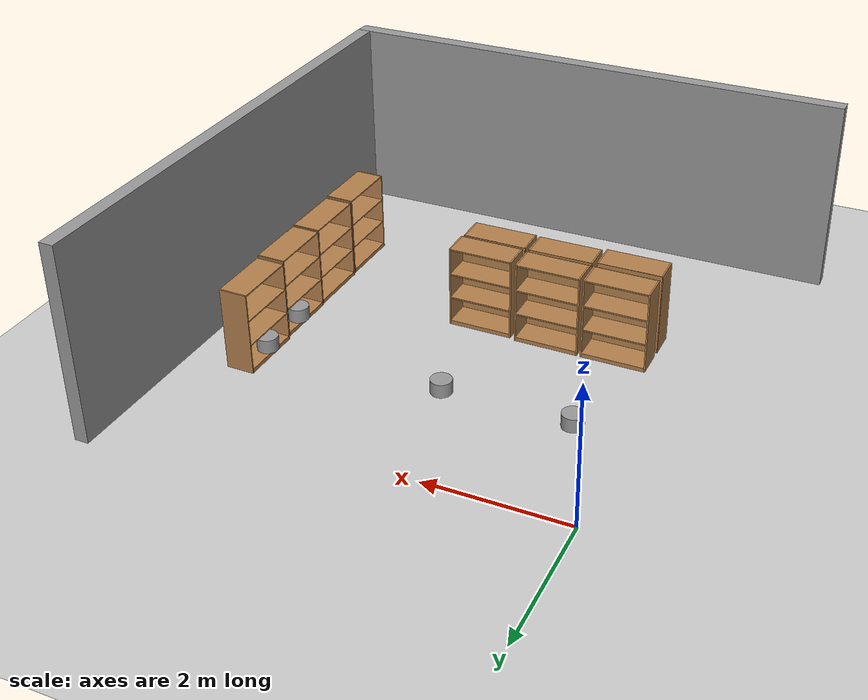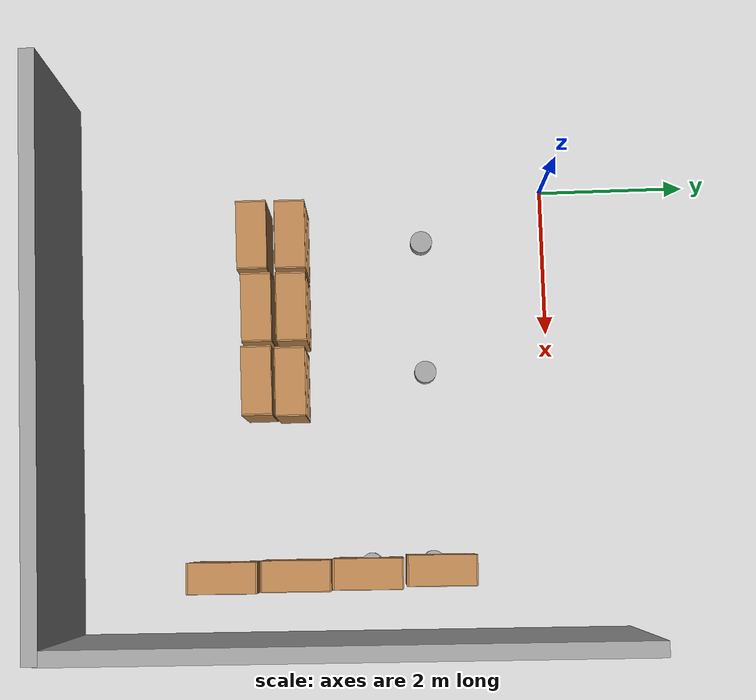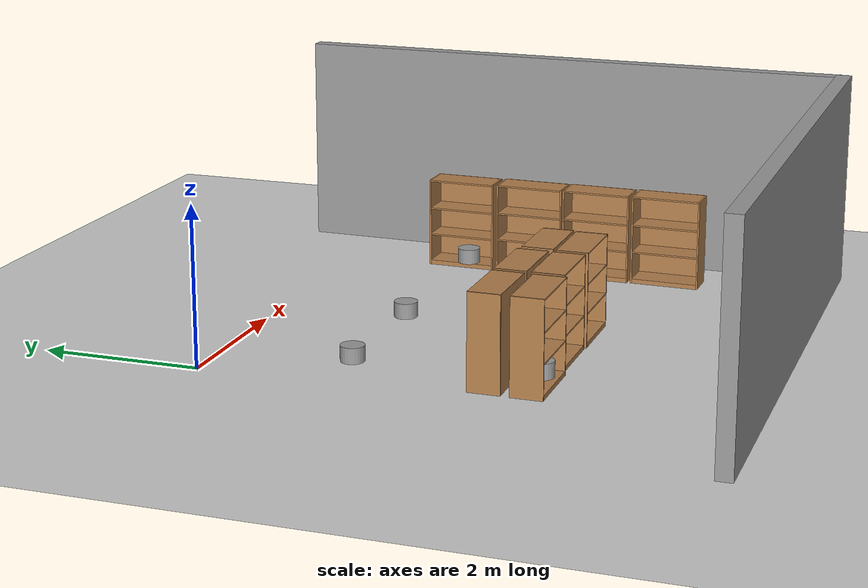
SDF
<sdf version="1.7">
 <world name="default">
  <model name="ground_plane">
   <static>1</static>
   <link name="link">
    <collision name="collision">
     <geometry><plane><normal>0 0 1</normal><size>100 100</size></plane></geometry>
     <surface>
      <contact><collide_bitmask>65535</collide_bitmask></contact>
      <friction><ode><mu>100</mu><mu2>50</mu2></ode></friction>
     </surface>
    </collision>
    <visual name="visual">
     <cast_shadows>0</cast_shadows>
     <geometry><plane><normal>0 0 1</normal><size>100 100</size></plane></geometry>
     <material>
      <script><uri>file://media/materials/scripts/gazebo.material</uri><name>Gazebo/Grey</name></script>
     </material>
    </visual>
   </link>
  </model>
  <model name="bookshelf_2_clone_4">
   <static>1</static>
   <link name="link">
    <inertial><mass>1</mass></inertial>
    <collision name="back">
     <pose>0 0.005 0.6 0 -0 0</pose>
     <geometry><box><size>0.9 0.01 1.2</size></box></geometry>
    </collision>
    <visual name="visual1">
     <pose>0 0.005 0.6 0 -0 0</pose>
     <geometry><box><size>0.9 0.01 1.2</size></box></geometry>
     <material>
      <script><uri>file://media/materials/scripts/gazebo.material</uri><name>Gazebo/Wood</name></script>
     </material>
    </visual>
    <collision name="left_side">
     <pose>0.45 -0.195 0.6 0 -0 0</pose>
     <geometry><box><size>0.02 0.4 1.2</size></box></geometry>
    </collision>
    <visual name="visual2">
     <pose>0.45 -0.195 0.6 0 -0 0</pose>
     <geometry><box><size>0.02 0.4 1.2</size></box></geometry>
     <material>
      <script><uri>file://media/materials/scripts/gazebo.material</uri><name>Gazebo/Wood</name></script>
     </material>
    </visual>
    <collision name="right_side">
     <pose>-0.45 -0.195 0.6 0 -0 0</pose>
     <geometry><box><size>0.02 0.4 1.2</size></box></geometry>
    </collision>
    <visual name="visual3">
     <pose>-0.45 -0.195 0.6 0 -0 0</pose>
     <geometry><box><size>0.02 0.4 1.2</size></box></geometry>
     <material>
      <script><uri>file://media/materials/scripts/gazebo.material</uri><name>Gazebo/Wood</name></script>
     </material>
    </visual>
    <collision name="bottom">
     <pose>0 -0.195 0.03 0 -0 0</pose>
     <geometry><box><size>0.88 0.4 0.06</size></box></geometry>
    </collision>
    <visual name="visual4">
     <pose>0 -0.195 0.03 0 -0 0</pose>
     <geometry><box><size>0.88 0.4 0.06</size></box></geometry>
     <material>
      <script><uri>file://media/materials/scripts/gazebo.material</uri><name>Gazebo/Wood</name></script>
     </material>
    </visual>
    <collision name="top">
     <pose>0 -0.195 1.19 0 -0 0</pose>
     <geometry><box><size>0.88 0.4 0.02</size></box></geometry>
    </collision>
    <visual name="visual5">
     <pose>0 -0.195 1.19 0 -0 0</pose>
     <geometry><box><size>0.88 0.4 0.02</size></box></geometry>
     <material>
      <script><uri>file://media/materials/scripts/gazebo.material</uri><name>Gazebo/Wood</name></script>
     </material>
    </visual>
    <collision name="low_shelf">
     <pose>0 -0.195 0.43 0 -0 0</pose>
     <geometry><box><size>0.88 0.4 0.02</size></box></geometry>
    </collision>
    <visual name="visual6">
     <pose>0 -0.195 0.43 0 -0 0</pose>
     <geometry><box><size>0.88 0.4 0.02</size></box></geometry>
     <material>
      <script><uri>file://media/materials/scripts/gazebo.material</uri><name>Gazebo/Wood</name></script>
     </material>
    </visual>
    <collision name="high_shelf">
     <pose>0 -0.195 0.8 0 -0 0</pose>
     <geometry><box><size>0.88 0.4 0.02</size></box></geometry>
    </collision>
    <visual name="visual7">
     <pose>0 -0.195 0.8 0 -0 0</pose>
     <geometry><box><size>0.88 0.4 0.02</size></box></geometry>
     <material>
      <script><uri>file://media/materials/scripts/gazebo.material</uri><name>Gazebo/Wood</name></script>
     </material>
    </visual>
   </link>
   <pose>2.67351 -3.69975 0 0 -0 3.13622</pose>
  </model>
  <model name="bookshelf_clone_clone_1">
   <static>1</static>
   <link name="link">
    <inertial><mass>1</mass></inertial>
    <collision name="back">
     <pose>0 0.005 0.6 0 -0 0</pose>
     <geometry><box><size>0.9 0.01 1.2</size></box></geometry>
    </collision>
    <visual name="visual1">
     <pose>0 0.005 0.6 0 -0 0</pose>
     <geometry><box><size>0.9 0.01 1.2</size></box></geometry>
     <material>
      <script><uri>file://media/materials/scripts/gazebo.material</uri><name>Gazebo/Wood</name></script>
     </material>
    </visual>
    <collision name="left_side">
     <pose>0.45 -0.195 0.6 0 -0 0</pose>
     <geometry><box><size>0.02 0.4 1.2</size></box></geometry>
    </collision>
    <visual name="visual2">
     <pose>0.45 -0.195 0.6 0 -0 0</pose>
     <geometry><box><size>0.02 0.4 1.2</size></box></geometry>
     <material>
      <script><uri>file://media/materials/scripts/gazebo.material</uri><name>Gazebo/Wood</name></script>
     </material>
    </visual>
    <collision name="right_side">
     <pose>-0.45 -0.195 0.6 0 -0 0</pose>
     <geometry><box><size>0.02 0.4 1.2</size></box></geometry>
    </collision>
    <visual name="visual3">
     <pose>-0.45 -0.195 0.6 0 -0 0</pose>
     <geometry><box><size>0.02 0.4 1.2</size></box></geometry>
     <material>
      <script><uri>file://media/materials/scripts/gazebo.material</uri><name>Gazebo/Wood</name></script>
     </material>
    </visual>
    <collision name="bottom">
     <pose>0 -0.195 0.03 0 -0 0</pose>
     <geometry><box><size>0.88 0.4 0.06</size></box></geometry>
    </collision>
    <visual name="visual4">
     <pose>0 -0.195 0.03 0 -0 0</pose>
     <geometry><box><size>0.88 0.4 0.06</size></box></geometry>
     <material>
      <script><uri>file://media/materials/scripts/gazebo.material</uri><name>Gazebo/Wood</name></script>
     </material>
    </visual>
    <collision name="top">
     <pose>0 -0.195 1.19 0 -0 0</pose>
     <geometry><box><size>0.88 0.4 0.02</size></box></geometry>
    </collision>
    <visual name="visual5">
     <pose>0 -0.195 1.19 0 -0 0</pose>
     <geometry><box><size>0.88 0.4 0.02</size></box></geometry>
     <material>
      <script><uri>file://media/materials/scripts/gazebo.material</uri><name>Gazebo/Wood</name></script>
     </material>
    </visual>
    <collision name="low_shelf">
     <pose>0 -0.195 0.43 0 -0 0</pose>
     <geometry><box><size>0.88 0.4 0.02</size></box></geometry>
    </collision>
    <visual name="visual6">
     <pose>0 -0.195 0.43 0 -0 0</pose>
     <geometry><box><size>0.88 0.4 0.02</size></box></geometry>
     <material>
      <script><uri>file://media/materials/scripts/gazebo.material</uri><name>Gazebo/Wood</name></script>
     </material>
    </visual>
    <collision name="high_shelf">
     <pose>0 -0.195 0.8 0 -0 0</pose>
     <geometry><box><size>0.88 0.4 0.02</size></box></geometry>
    </collision>
    <visual name="visual7">
     <pose>0 -0.195 0.8 0 -0 0</pose>
     <geometry><box><size>0.88 0.4 0.02</size></box></geometry>
     <material>
      <script><uri>file://media/materials/scripts/gazebo.material</uri><name>Gazebo/Wood</name></script>
     </material>
    </visual>
   </link>
   <pose>2.6482 -3.75149 0 0 -0 0</pose>
  </model>
  <model name="bookshelf_2_clone_clone">
   <static>1</static>
   <link name="link">
    <inertial><mass>1</mass></inertial>
    <collision name="back">
     <pose>0 0.005 0.6 0 -0 0</pose>
     <geometry><box><size>0.9 0.01 1.2</size></box></geometry>
    </collision>
    <visual name="visual1">
     <pose>0 0.005 0.6 0 -0 0</pose>
     <geometry><box><size>0.9 0.01 1.2</size></box></geometry>
     <material>
      <script><uri>file://media/materials/scripts/gazebo.material</uri><name>Gazebo/Wood</name></script>
     </material>
    </visual>
    <collision name="left_side">
     <pose>0.45 -0.195 0.6 0 -0 0</pose>
     <geometry><box><size>0.02 0.4 1.2</size></box></geometry>
    </collision>
    <visual name="visual2">
     <pose>0.45 -0.195 0.6 0 -0 0</pose>
     <geometry><box><size>0.02 0.4 1.2</size></box></geometry>
     <material>
      <script><uri>file://media/materials/scripts/gazebo.material</uri><name>Gazebo/Wood</name></script>
     </material>
    </visual>
    <collision name="right_side">
     <pose>-0.45 -0.195 0.6 0 -0 0</pose>
     <geometry><box><size>0.02 0.4 1.2</size></box></geometry>
    </collision>
    <visual name="visual3">
     <pose>-0.45 -0.195 0.6 0 -0 0</pose>
     <geometry><box><size>0.02 0.4 1.2</size></box></geometry>
     <material>
      <script><uri>file://media/materials/scripts/gazebo.material</uri><name>Gazebo/Wood</name></script>
     </material>
    </visual>
    <collision name="bottom">
     <pose>0 -0.195 0.03 0 -0 0</pose>
     <geometry><box><size>0.88 0.4 0.06</size></box></geometry>
    </collision>
    <visual name="visual4">
     <pose>0 -0.195 0.03 0 -0 0</pose>
     <geometry><box><size>0.88 0.4 0.06</size></box></geometry>
     <material>
      <script><uri>file://media/materials/scripts/gazebo.material</uri><name>Gazebo/Wood</name></script>
     </material>
    </visual>
    <collision name="top">
     <pose>0 -0.195 1.19 0 -0 0</pose>
     <geometry><box><size>0.88 0.4 0.02</size></box></geometry>
    </collision>
    <visual name="visual5">
     <pose>0 -0.195 1.19 0 -0 0</pose>
     <geometry><box><size>0.88 0.4 0.02</size></box></geometry>
     <material>
      <script><uri>file://media/materials/scripts/gazebo.material</uri><name>Gazebo/Wood</name></script>
     </material>
    </visual>
    <collision name="low_shelf">
     <pose>0 -0.195 0.43 0 -0 0</pose>
     <geometry><box><size>0.88 0.4 0.02</size></box></geometry>
    </collision>
    <visual name="visual6">
     <pose>0 -0.195 0.43 0 -0 0</pose>
     <geometry><box><size>0.88 0.4 0.02</size></box></geometry>
     <material>
      <script><uri>file://media/materials/scripts/gazebo.material</uri><name>Gazebo/Wood</name></script>
     </material>
    </visual>
    <collision name="high_shelf">
     <pose>0 -0.195 0.8 0 -0 0</pose>
     <geometry><box><size>0.88 0.4 0.02</size></box></geometry>
    </collision>
    <visual name="visual7">
     <pose>0 -0.195 0.8 0 -0 0</pose>
     <geometry><box><size>0.88 0.4 0.02</size></box></geometry>
     <material>
      <script><uri>file://media/materials/scripts/gazebo.material</uri><name>Gazebo/Wood</name></script>
     </material>
    </visual>
   </link>
   <pose>1.68191 -3.66271 0 0 -0 3.13622</pose>
  </model>
  <model name="bookshelf_2_clone_clone_0">
   <static>1</static>
   <link name="link">
    <inertial><mass>1</mass></inertial>
    <collision name="back">
     <pose>0 0.005 0.6 0 -0 0</pose>
     <geometry><box><size>0.9 0.01 1.2</size></box></geometry>
    </collision>
    <visual name="visual1">
     <pose>0 0.005 0.6 0 -0 0</pose>
     <geometry><box><size>0.9 0.01 1.2</size></box></geometry>
     <material>
      <script><uri>file://media/materials/scripts/gazebo.material</uri><name>Gazebo/Wood</name></script>
     </material>
    </visual>
    <collision name="left_side">
     <pose>0.45 -0.195 0.6 0 -0 0</pose>
     <geometry><box><size>0.02 0.4 1.2</size></box></geometry>
    </collision>
    <visual name="visual2">
     <pose>0.45 -0.195 0.6 0 -0 0</pose>
     <geometry><box><size>0.02 0.4 1.2</size></box></geometry>
     <material>
      <script><uri>file://media/materials/scripts/gazebo.material</uri><name>Gazebo/Wood</name></script>
     </material>
    </visual>
    <collision name="right_side">
     <pose>-0.45 -0.195 0.6 0 -0 0</pose>
     <geometry><box><size>0.02 0.4 1.2</size></box></geometry>
    </collision>
    <visual name="visual3">
     <pose>-0.45 -0.195 0.6 0 -0 0</pose>
     <geometry><box><size>0.02 0.4 1.2</size></box></geometry>
     <material>
      <script><uri>file://media/materials/scripts/gazebo.material</uri><name>Gazebo/Wood</name></script>
     </material>
    </visual>
    <collision name="bottom">
     <pose>0 -0.195 0.03 0 -0 0</pose>
     <geometry><box><size>0.88 0.4 0.06</size></box></geometry>
    </collision>
    <visual name="visual4">
     <pose>0 -0.195 0.03 0 -0 0</pose>
     <geometry><box><size>0.88 0.4 0.06</size></box></geometry>
     <material>
      <script><uri>file://media/materials/scripts/gazebo.material</uri><name>Gazebo/Wood</name></script>
     </material>
    </visual>
    <collision name="top">
     <pose>0 -0.195 1.19 0 -0 0</pose>
     <geometry><box><size>0.88 0.4 0.02</size></box></geometry>
    </collision>
    <visual name="visual5">
     <pose>0 -0.195 1.19 0 -0 0</pose>
     <geometry><box><size>0.88 0.4 0.02</size></box></geometry>
     <material>
      <script><uri>file://media/materials/scripts/gazebo.material</uri><name>Gazebo/Wood</name></script>
     </material>
    </visual>
    <collision name="low_shelf">
     <pose>0 -0.195 0.43 0 -0 0</pose>
     <geometry><box><size>0.88 0.4 0.02</size></box></geometry>
    </collision>
    <visual name="visual6">
     <pose>0 -0.195 0.43 0 -0 0</pose>
     <geometry><box><size>0.88 0.4 0.02</size></box></geometry>
     <material>
      <script><uri>file://media/materials/scripts/gazebo.material</uri><name>Gazebo/Wood</name></script>
     </material>
    </visual>
    <collision name="high_shelf">
     <pose>0 -0.195 0.8 0 -0 0</pose>
     <geometry><box><size>0.88 0.4 0.02</size></box></geometry>
    </collision>
    <visual name="visual7">
     <pose>0 -0.195 0.8 0 -0 0</pose>
     <geometry><box><size>0.88 0.4 0.02</size></box></geometry>
     <material>
      <script><uri>file://media/materials/scripts/gazebo.material</uri><name>Gazebo/Wood</name></script>
     </material>
    </visual>
   </link>
   <pose>0.715126 -3.6559 0 0 -0 3.13622</pose>
  </model>
  <model name="bookshelf_clone_clone_clone_0_clone">
   <static>1</static>
   <link name="link">
    <inertial><mass>1</mass></inertial>
    <collision name="back">
     <pose>0 0.005 0.6 0 -0 0</pose>
     <geometry><box><size>0.9 0.01 1.2</size></box></geometry>
    </collision>
    <visual name="visual1">
     <pose>0 0.005 0.6 0 -0 0</pose>
     <geometry><box><size>0.9 0.01 1.2</size></box></geometry>
     <material>
      <script><uri>file://media/materials/scripts/gazebo.material</uri><name>Gazebo/Wood</name></script>
     </material>
    </visual>
    <collision name="left_side">
     <pose>0.45 -0.195 0.6 0 -0 0</pose>
     <geometry><box><size>0.02 0.4 1.2</size></box></geometry>
    </collision>
    <visual name="visual2">
     <pose>0.45 -0.195 0.6 0 -0 0</pose>
     <geometry><box><size>0.02 0.4 1.2</size></box></geometry>
     <material>
      <script><uri>file://media/materials/scripts/gazebo.material</uri><name>Gazebo/Wood</name></script>
     </material>
    </visual>
    <collision name="right_side">
     <pose>-0.45 -0.195 0.6 0 -0 0</pose>
     <geometry><box><size>0.02 0.4 1.2</size></box></geometry>
    </collision>
    <visual name="visual3">
     <pose>-0.45 -0.195 0.6 0 -0 0</pose>
     <geometry><box><size>0.02 0.4 1.2</size></box></geometry>
     <material>
      <script><uri>file://media/materials/scripts/gazebo.material</uri><name>Gazebo/Wood</name></script>
     </material>
    </visual>
    <collision name="bottom">
     <pose>0 -0.195 0.03 0 -0 0</pose>
     <geometry><box><size>0.88 0.4 0.06</size></box></geometry>
    </collision>
    <visual name="visual4">
     <pose>0 -0.195 0.03 0 -0 0</pose>
     <geometry><box><size>0.88 0.4 0.06</size></box></geometry>
     <material>
      <script><uri>file://media/materials/scripts/gazebo.material</uri><name>Gazebo/Wood</name></script>
     </material>
    </visual>
    <collision name="top">
     <pose>0 -0.195 1.19 0 -0 0</pose>
     <geometry><box><size>0.88 0.4 0.02</size></box></geometry>
    </collision>
    <visual name="visual5">
     <pose>0 -0.195 1.19 0 -0 0</pose>
     <geometry><box><size>0.88 0.4 0.02</size></box></geometry>
     <material>
      <script><uri>file://media/materials/scripts/gazebo.material</uri><name>Gazebo/Wood</name></script>
     </material>
    </visual>
    <collision name="low_shelf">
     <pose>0 -0.195 0.43 0 -0 0</pose>
     <geometry><box><size>0.88 0.4 0.02</size></box></geometry>
    </collision>
    <visual name="visual6">
     <pose>0 -0.195 0.43 0 -0 0</pose>
     <geometry><box><size>0.88 0.4 0.02</size></box></geometry>
     <material>
      <script><uri>file://media/materials/scripts/gazebo.material</uri><name>Gazebo/Wood</name></script>
     </material>
    </visual>
    <collision name="high_shelf">
     <pose>0 -0.195 0.8 0 -0 0</pose>
     <geometry><box><size>0.88 0.4 0.02</size></box></geometry>
    </collision>
    <visual name="visual7">
     <pose>0 -0.195 0.8 0 -0 0</pose>
     <geometry><box><size>0.88 0.4 0.02</size></box></geometry>
     <material>
      <script><uri>file://media/materials/scripts/gazebo.material</uri><name>Gazebo/Wood</name></script>
     </material>
    </visual>
   </link>
   <pose>1.67784 -3.7341 0 0 -0 0</pose>
  </model>
  <model name="bookshelf_clone_clone_clone_0_clone_0">
   <static>1</static>
   <link name="link">
    <inertial><mass>1</mass></inertial>
    <collision name="back">
     <pose>0 0.005 0.6 0 -0 0</pose>
     <geometry><box><size>0.9 0.01 1.2</size></box></geometry>
    </collision>
    <visual name="visual1">
     <pose>0 0.005 0.6 0 -0 0</pose>
     <geometry><box><size>0.9 0.01 1.2</size></box></geometry>
     <material>
      <script><uri>file://media/materials/scripts/gazebo.material</uri><name>Gazebo/Wood</name></script>
     </material>
    </visual>
    <collision name="left_side">
     <pose>0.45 -0.195 0.6 0 -0 0</pose>
     <geometry><box><size>0.02 0.4 1.2</size></box></geometry>
    </collision>
    <visual name="visual2">
     <pose>0.45 -0.195 0.6 0 -0 0</pose>
     <geometry><box><size>0.02 0.4 1.2</size></box></geometry>
     <material>
      <script><uri>file://media/materials/scripts/gazebo.material</uri><name>Gazebo/Wood</name></script>
     </material>
    </visual>
    <collision name="right_side">
     <pose>-0.45 -0.195 0.6 0 -0 0</pose>
     <geometry><box><size>0.02 0.4 1.2</size></box></geometry>
    </collision>
    <visual name="visual3">
     <pose>-0.45 -0.195 0.6 0 -0 0</pose>
     <geometry><box><size>0.02 0.4 1.2</size></box></geometry>
     <material>
      <script><uri>file://media/materials/scripts/gazebo.material</uri><name>Gazebo/Wood</name></script>
     </material>
    </visual>
    <collision name="bottom">
     <pose>0 -0.195 0.03 0 -0 0</pose>
     <geometry><box><size>0.88 0.4 0.06</size></box></geometry>
    </collision>
    <visual name="visual4">
     <pose>0 -0.195 0.03 0 -0 0</pose>
     <geometry><box><size>0.88 0.4 0.06</size></box></geometry>
     <material>
      <script><uri>file://media/materials/scripts/gazebo.material</uri><name>Gazebo/Wood</name></script>
     </material>
    </visual>
    <collision name="top">
     <pose>0 -0.195 1.19 0 -0 0</pose>
     <geometry><box><size>0.88 0.4 0.02</size></box></geometry>
    </collision>
    <visual name="visual5">
     <pose>0 -0.195 1.19 0 -0 0</pose>
     <geometry><box><size>0.88 0.4 0.02</size></box></geometry>
     <material>
      <script><uri>file://media/materials/scripts/gazebo.material</uri><name>Gazebo/Wood</name></script>
     </material>
    </visual>
    <collision name="low_shelf">
     <pose>0 -0.195 0.43 0 -0 0</pose>
     <geometry><box><size>0.88 0.4 0.02</size></box></geometry>
    </collision>
    <visual name="visual6">
     <pose>0 -0.195 0.43 0 -0 0</pose>
     <geometry><box><size>0.88 0.4 0.02</size></box></geometry>
     <material>
      <script><uri>file://media/materials/scripts/gazebo.material</uri><name>Gazebo/Wood</name></script>
     </material>
    </visual>
    <collision name="high_shelf">
     <pose>0 -0.195 0.8 0 -0 0</pose>
     <geometry><box><size>0.88 0.4 0.02</size></box></geometry>
    </collision>
    <visual name="visual7">
     <pose>0 -0.195 0.8 0 -0 0</pose>
     <geometry><box><size>0.88 0.4 0.02</size></box></geometry>
     <material>
      <script><uri>file://media/materials/scripts/gazebo.material</uri><name>Gazebo/Wood</name></script>
     </material>
    </visual>
   </link>
   <pose>0.708118 -3.77653 0 0 -0 0</pose>
  </model>
  <model name="bookshelf_3_clone_3">
   <static>1</static>
   <link name="link">
    <inertial><mass>1</mass></inertial>
    <collision name="back">
     <pose>0 0.005 0.6 0 -0 0</pose>
     <geometry><box><size>0.9 0.01 1.2</size></box></geometry>
    </collision>
    <visual name="visual1">
     <pose>0 0.005 0.6 0 -0 0</pose>
     <geometry><box><size>0.9 0.01 1.2</size></box></geometry>
     <material>
      <script><uri>file://media/materials/scripts/gazebo.material</uri><name>Gazebo/Wood</name></script>
     </material>
    </visual>
    <collision name="left_side">
     <pose>0.45 -0.195 0.6 0 -0 0</pose>
     <geometry><box><size>0.02 0.4 1.2</size></box></geometry>
    </collision>
    <visual name="visual2">
     <pose>0.45 -0.195 0.6 0 -0 0</pose>
     <geometry><box><size>0.02 0.4 1.2</size></box></geometry>
     <material>
      <script><uri>file://media/materials/scripts/gazebo.material</uri><name>Gazebo/Wood</name></script>
     </material>
    </visual>
    <collision name="right_side">
     <pose>-0.45 -0.195 0.6 0 -0 0</pose>
     <geometry><box><size>0.02 0.4 1.2</size></box></geometry>
    </collision>
    <visual name="visual3">
     <pose>-0.45 -0.195 0.6 0 -0 0</pose>
     <geometry><box><size>0.02 0.4 1.2</size></box></geometry>
     <material>
      <script><uri>file://media/materials/scripts/gazebo.material</uri><name>Gazebo/Wood</name></script>
     </material>
    </visual>
    <collision name="bottom">
     <pose>0 -0.195 0.03 0 -0 0</pose>
     <geometry><box><size>0.88 0.4 0.06</size></box></geometry>
    </collision>
    <visual name="visual4">
     <pose>0 -0.195 0.03 0 -0 0</pose>
     <geometry><box><size>0.88 0.4 0.06</size></box></geometry>
     <material>
      <script><uri>file://media/materials/scripts/gazebo.material</uri><name>Gazebo/Wood</name></script>
     </material>
    </visual>
    <collision name="top">
     <pose>0 -0.195 1.19 0 -0 0</pose>
     <geometry><box><size>0.88 0.4 0.02</size></box></geometry>
    </collision>
    <visual name="visual5">
     <pose>0 -0.195 1.19 0 -0 0</pose>
     <geometry><box><size>0.88 0.4 0.02</size></box></geometry>
     <material>
      <script><uri>file://media/materials/scripts/gazebo.material</uri><name>Gazebo/Wood</name></script>
     </material>
    </visual>
    <collision name="low_shelf">
     <pose>0 -0.195 0.43 0 -0 0</pose>
     <geometry><box><size>0.88 0.4 0.02</size></box></geometry>
    </collision>
    <visual name="visual6">
     <pose>0 -0.195 0.43 0 -0 0</pose>
     <geometry><box><size>0.88 0.4 0.02</size></box></geometry>
     <material>
      <script><uri>file://media/materials/scripts/gazebo.material</uri><name>Gazebo/Wood</name></script>
     </material>
    </visual>
    <collision name="high_shelf">
     <pose>0 -0.195 0.8 0 -0 0</pose>
     <geometry><box><size>0.88 0.4 0.02</size></box></geometry>
    </collision>
    <visual name="visual7">
     <pose>0 -0.195 0.8 0 -0 0</pose>
     <geometry><box><size>0.88 0.4 0.02</size></box></geometry>
     <material>
      <script><uri>file://media/materials/scripts/gazebo.material</uri><name>Gazebo/Wood</name></script>
     </material>
    </visual>
   </link>
   <pose>5.38593 -1.59971 0 0 0 -1.59113</pose>
  </model>
  <model name="bookshelf_3_clone_4">
   <static>1</static>
   <link name="link">
    <inertial><mass>1</mass></inertial>
    <collision name="back">
     <pose>0 0.005 0.6 0 -0 0</pose>
     <geometry><box><size>0.9 0.01 1.2</size></box></geometry>
    </collision>
    <visual name="visual1">
     <pose>0 0.005 0.6 0 -0 0</pose>
     <geometry><box><size>0.9 0.01 1.2</size></box></geometry>
     <material>
      <script><uri>file://media/materials/scripts/gazebo.material</uri><name>Gazebo/Wood</name></script>
     </material>
    </visual>
    <collision name="left_side">
     <pose>0.45 -0.195 0.6 0 -0 0</pose>
     <geometry><box><size>0.02 0.4 1.2</size></box></geometry>
    </collision>
    <visual name="visual2">
     <pose>0.45 -0.195 0.6 0 -0 0</pose>
     <geometry><box><size>0.02 0.4 1.2</size></box></geometry>
     <material>
      <script><uri>file://media/materials/scripts/gazebo.material</uri><name>Gazebo/Wood</name></script>
     </material>
    </visual>
    <collision name="right_side">
     <pose>-0.45 -0.195 0.6 0 -0 0</pose>
     <geometry><box><size>0.02 0.4 1.2</size></box></geometry>
    </collision>
    <visual name="visual3">
     <pose>-0.45 -0.195 0.6 0 -0 0</pose>
     <geometry><box><size>0.02 0.4 1.2</size></box></geometry>
     <material>
      <script><uri>file://media/materials/scripts/gazebo.material</uri><name>Gazebo/Wood</name></script>
     </material>
    </visual>
    <collision name="bottom">
     <pose>0 -0.195 0.03 0 -0 0</pose>
     <geometry><box><size>0.88 0.4 0.06</size></box></geometry>
    </collision>
    <visual name="visual4">
     <pose>0 -0.195 0.03 0 -0 0</pose>
     <geometry><box><size>0.88 0.4 0.06</size></box></geometry>
     <material>
      <script><uri>file://media/materials/scripts/gazebo.material</uri><name>Gazebo/Wood</name></script>
     </material>
    </visual>
    <collision name="top">
     <pose>0 -0.195 1.19 0 -0 0</pose>
     <geometry><box><size>0.88 0.4 0.02</size></box></geometry>
    </collision>
    <visual name="visual5">
     <pose>0 -0.195 1.19 0 -0 0</pose>
     <geometry><box><size>0.88 0.4 0.02</size></box></geometry>
     <material>
      <script><uri>file://media/materials/scripts/gazebo.material</uri><name>Gazebo/Wood</name></script>
     </material>
    </visual>
    <collision name="low_shelf">
     <pose>0 -0.195 0.43 0 -0 0</pose>
     <geometry><box><size>0.88 0.4 0.02</size></box></geometry>
    </collision>
    <visual name="visual6">
     <pose>0 -0.195 0.43 0 -0 0</pose>
     <geometry><box><size>0.88 0.4 0.02</size></box></geometry>
     <material>
      <script><uri>file://media/materials/scripts/gazebo.material</uri><name>Gazebo/Wood</name></script>
     </material>
    </visual>
    <collision name="high_shelf">
     <pose>0 -0.195 0.8 0 -0 0</pose>
     <geometry><box><size>0.88 0.4 0.02</size></box></geometry>
    </collision>
    <visual name="visual7">
     <pose>0 -0.195 0.8 0 -0 0</pose>
     <geometry><box><size>0.88 0.4 0.02</size></box></geometry>
     <material>
      <script><uri>file://media/materials/scripts/gazebo.material</uri><name>Gazebo/Wood</name></script>
     </material>
    </visual>
   </link>
   <pose>5.40098 -2.56062 0 0 0 -1.59113</pose>
  </model>
  <model name="bookshelf_3_clone_5">
   <static>1</static>
   <link name="link">
    <inertial><mass>1</mass></inertial>
    <collision name="back">
     <pose>0 0.005 0.6 0 -0 0</pose>
     <geometry><box><size>0.9 0.01 1.2</size></box></geometry>
    </collision>
    <visual name="visual1">
     <pose>0 0.005 0.6 0 -0 0</pose>
     <geometry><box><size>0.9 0.01 1.2</size></box></geometry>
     <material>
      <script><uri>file://media/materials/scripts/gazebo.material</uri><name>Gazebo/Wood</name></script>
     </material>
    </visual>
    <collision name="left_side">
     <pose>0.45 -0.195 0.6 0 -0 0</pose>
     <geometry><box><size>0.02 0.4 1.2</size></box></geometry>
    </collision>
    <visual name="visual2">
     <pose>0.45 -0.195 0.6 0 -0 0</pose>
     <geometry><box><size>0.02 0.4 1.2</size></box></geometry>
     <material>
      <script><uri>file://media/materials/scripts/gazebo.material</uri><name>Gazebo/Wood</name></script>
     </material>
    </visual>
    <collision name="right_side">
     <pose>-0.45 -0.195 0.6 0 -0 0</pose>
     <geometry><box><size>0.02 0.4 1.2</size></box></geometry>
    </collision>
    <visual name="visual3">
     <pose>-0.45 -0.195 0.6 0 -0 0</pose>
     <geometry><box><size>0.02 0.4 1.2</size></box></geometry>
     <material>
      <script><uri>file://media/materials/scripts/gazebo.material</uri><name>Gazebo/Wood</name></script>
     </material>
    </visual>
    <collision name="bottom">
     <pose>0 -0.195 0.03 0 -0 0</pose>
     <geometry><box><size>0.88 0.4 0.06</size></box></geometry>
    </collision>
    <visual name="visual4">
     <pose>0 -0.195 0.03 0 -0 0</pose>
     <geometry><box><size>0.88 0.4 0.06</size></box></geometry>
     <material>
      <script><uri>file://media/materials/scripts/gazebo.material</uri><name>Gazebo/Wood</name></script>
     </material>
    </visual>
    <collision name="top">
     <pose>0 -0.195 1.19 0 -0 0</pose>
     <geometry><box><size>0.88 0.4 0.02</size></box></geometry>
    </collision>
    <visual name="visual5">
     <pose>0 -0.195 1.19 0 -0 0</pose>
     <geometry><box><size>0.88 0.4 0.02</size></box></geometry>
     <material>
      <script><uri>file://media/materials/scripts/gazebo.material</uri><name>Gazebo/Wood</name></script>
     </material>
    </visual>
    <collision name="low_shelf">
     <pose>0 -0.195 0.43 0 -0 0</pose>
     <geometry><box><size>0.88 0.4 0.02</size></box></geometry>
    </collision>
    <visual name="visual6">
     <pose>0 -0.195 0.43 0 -0 0</pose>
     <geometry><box><size>0.88 0.4 0.02</size></box></geometry>
     <material>
      <script><uri>file://media/materials/scripts/gazebo.material</uri><name>Gazebo/Wood</name></script>
     </material>
    </visual>
    <collision name="high_shelf">
     <pose>0 -0.195 0.8 0 -0 0</pose>
     <geometry><box><size>0.88 0.4 0.02</size></box></geometry>
    </collision>
    <visual name="visual7">
     <pose>0 -0.195 0.8 0 -0 0</pose>
     <geometry><box><size>0.88 0.4 0.02</size></box></geometry>
     <material>
      <script><uri>file://media/materials/scripts/gazebo.material</uri><name>Gazebo/Wood</name></script>
     </material>
    </visual>
   </link>
   <pose>5.3996 -3.49578 0 0 0 -1.59113</pose>
  </model>
  <model name="bookshelf_3_clone_6">
   <static>1</static>
   <link name="link">
    <inertial><mass>1</mass></inertial>
    <collision name="back">
     <pose>0 0.005 0.6 0 -0 0</pose>
     <geometry><box><size>0.9 0.01 1.2</size></box></geometry>
    </collision>
    <visual name="visual1">
     <pose>0 0.005 0.6 0 -0 0</pose>
     <geometry><box><size>0.9 0.01 1.2</size></box></geometry>
     <material>
      <script><uri>file://media/materials/scripts/gazebo.material</uri><name>Gazebo/Wood</name></script>
     </material>
    </visual>
    <collision name="left_side">
     <pose>0.45 -0.195 0.6 0 -0 0</pose>
     <geometry><box><size>0.02 0.4 1.2</size></box></geometry>
    </collision>
    <visual name="visual2">
     <pose>0.45 -0.195 0.6 0 -0 0</pose>
     <geometry><box><size>0.02 0.4 1.2</size></box></geometry>
     <material>
      <script><uri>file://media/materials/scripts/gazebo.material</uri><name>Gazebo/Wood</name></script>
     </material>
    </visual>
    <collision name="right_side">
     <pose>-0.45 -0.195 0.6 0 -0 0</pose>
     <geometry><box><size>0.02 0.4 1.2</size></box></geometry>
    </collision>
    <visual name="visual3">
     <pose>-0.45 -0.195 0.6 0 -0 0</pose>
     <geometry><box><size>0.02 0.4 1.2</size></box></geometry>
     <material>
      <script><uri>file://media/materials/scripts/gazebo.material</uri><name>Gazebo/Wood</name></script>
     </material>
    </visual>
    <collision name="bottom">
     <pose>0 -0.195 0.03 0 -0 0</pose>
     <geometry><box><size>0.88 0.4 0.06</size></box></geometry>
    </collision>
    <visual name="visual4">
     <pose>0 -0.195 0.03 0 -0 0</pose>
     <geometry><box><size>0.88 0.4 0.06</size></box></geometry>
     <material>
      <script><uri>file://media/materials/scripts/gazebo.material</uri><name>Gazebo/Wood</name></script>
     </material>
    </visual>
    <collision name="top">
     <pose>0 -0.195 1.19 0 -0 0</pose>
     <geometry><box><size>0.88 0.4 0.02</size></box></geometry>
    </collision>
    <visual name="visual5">
     <pose>0 -0.195 1.19 0 -0 0</pose>
     <geometry><box><size>0.88 0.4 0.02</size></box></geometry>
     <material>
      <script><uri>file://media/materials/scripts/gazebo.material</uri><name>Gazebo/Wood</name></script>
     </material>
    </visual>
    <collision name="low_shelf">
     <pose>0 -0.195 0.43 0 -0 0</pose>
     <geometry><box><size>0.88 0.4 0.02</size></box></geometry>
    </collision>
    <visual name="visual6">
     <pose>0 -0.195 0.43 0 -0 0</pose>
     <geometry><box><size>0.88 0.4 0.02</size></box></geometry>
     <material>
      <script><uri>file://media/materials/scripts/gazebo.material</uri><name>Gazebo/Wood</name></script>
     </material>
    </visual>
    <collision name="high_shelf">
     <pose>0 -0.195 0.8 0 -0 0</pose>
     <geometry><box><size>0.88 0.4 0.02</size></box></geometry>
    </collision>
    <visual name="visual7">
     <pose>0 -0.195 0.8 0 -0 0</pose>
     <geometry><box><size>0.88 0.4 0.02</size></box></geometry>
     <material>
      <script><uri>file://media/materials/scripts/gazebo.material</uri><name>Gazebo/Wood</name></script>
     </material>
    </visual>
   </link>
   <pose>5.39706 -4.45427 0 0 0 -1.59113</pose>
  </model>
  <model name="grey_wall_0_clone">
   <static>1</static>
   <link name="link">
    <pose>0 0 1.4 0 -0 0</pose>
    <collision name="collision"><geometry><box><size>7.5 0.2 2.8</size></box></geometry></collision>
    <visual name="visual">
     <cast_shadows>0</cast_shadows>
     <geometry><box><size>7.5 0.2 2.8</size></box></geometry>
     <material>
      <script>
       <uri>model://grey_wall/materials/scripts</uri>
       <uri>model://grey_wall/materials/textures</uri>
       <name>vrc/grey_wall</name>
      </script>
     </material>
    </visual>
   </link>
   <pose>6.09124 -2.76449 0 0 0 -1.58733</pose>
  </model>
  <model name="grey_wall_clone">
   <static>1</static>
   <link name="link">
    <pose>0 0 1.4 0 -0 0</pose>
    <collision name="collision"><geometry><box><size>7.5 0.2 2.8</size></box></geometry></collision>
    <visual name="visual">
     <cast_shadows>0</cast_shadows>
     <geometry><box><size>7.5 0.2 2.8</size></box></geometry>
     <material>
      <script>
       <uri>model://grey_wall/materials/scripts</uri>
       <uri>model://grey_wall/materials/textures</uri>
       <name>vrc/grey_wall</name>
      </script>
     </material>
    </visual>
   </link>
   <pose>2.36873 -6.54868 0 0 -0 0</pose>
  </model>
  <model name="short_cylinder_2">
   <link name="link">
    <inertial>
     <mass>1</mass>
     <inertia><ixx>0.145833</ixx><ixy>0</ixy><ixz>0</ixz><iyy>0.145833</iyy><iyz>0</iyz><izz>0.125</izz></inertia>
    </inertial>
    <visual name="visual">
     <geometry><cylinder><radius>0.15</radius><length>0.2</length></cylinder></geometry>
     <material>
      <script><name>Gazebo/Grey</name><uri>file://media/materials/scripts/gazebo.material</uri></script>
      <shader type="pixel"><normal_map>__default__</normal_map></shader>
      <ambient>0.3 0.3 0.3 1</ambient>
      <diffuse>0.7 0.7 0.7 1</diffuse>
      <specular>0.01 0.01 0.01 1</specular>
      <emissive>0 0 0 1</emissive>
     </material>
    </visual>
    <collision name="collision">
     <geometry><cylinder><radius>0.15</radius><length>0.2</length></cylinder></geometry>
     <surface>
      <friction>
       <ode><mu>1</mu><mu2>1</mu2><fdir1>0 0 0</fdir1><slip1>0</slip1><slip2>0</slip2></ode>
       <torsional>
        <coefficient>1</coefficient>
        <patch_radius>0</patch_radius>
        <surface_radius>0</surface_radius>
        <use_patch_radius>1</use_patch_radius>
        <ode><slip>0</slip></ode>
       </torsional>
      </friction>
      <bounce><restitution_coefficient>0</restitution_coefficient><threshold>1e+06</threshold></bounce>
      <contact>
       <collide_without_contact>0</collide_without_contact>
       <collide_without_contact_bitmask>1</collide_without_contact_bitmask>
       <collide_bitmask>1</collide_bitmask>
       <ode>
        <soft_cfm>0</soft_cfm>
        <soft_erp>0.2</soft_erp>
        <kp>1e+13</kp>
        <kd>1</kd>
        <max_vel>0.01</max_vel>
        <min_depth>0</min_depth>
       </ode>
       <bullet>
        <split_impulse>1</split_impulse>
        <split_impulse_penetration_threshold>-0.01</split_impulse_penetration_threshold>
        <soft_cfm>0</soft_cfm>
        <soft_erp>0.2</soft_erp>
        <kp>1e+13</kp>
        <kd>1</kd>
       </bullet>
      </contact>
     </surface>
    </collision>
   </link>
   <static>0</static>
   <pose>5.09059 -1.67338 0.159991 -4e-06 7e-06 -0.17369</pose>
  </model>
  <model name="short_cylinder_3">
   <link name="link">
    <inertial>
     <mass>1</mass>
     <inertia><ixx>0.145833</ixx><ixy>0</ixy><ixz>0</ixz><iyy>0.145833</iyy><iyz>0</iyz><izz>0.125</izz></inertia>
    </inertial>
    <visual name="visual">
     <geometry><cylinder><radius>0.15</radius><length>0.2</length></cylinder></geometry>
     <material>
      <script><name>Gazebo/Grey</name><uri>file://media/materials/scripts/gazebo.material</uri></script>
      <shader type="pixel"><normal_map>__default__</normal_map></shader>
      <ambient>0.3 0.3 0.3 1</ambient>
      <diffuse>0.7 0.7 0.7 1</diffuse>
      <specular>0.01 0.01 0.01 1</specular>
      <emissive>0 0 0 1</emissive>
     </material>
    </visual>
    <collision name="collision">
     <geometry><cylinder><radius>0.15</radius><length>0.2</length></cylinder></geometry>
     <surface>
      <friction>
       <ode><mu>1</mu><mu2>1</mu2><fdir1>0 0 0</fdir1><slip1>0</slip1><slip2>0</slip2></ode>
       <torsional>
        <coefficient>1</coefficient>
        <patch_radius>0</patch_radius>
        <surface_radius>0</surface_radius>
        <use_patch_radius>1</use_patch_radius>
        <ode><slip>0</slip></ode>
       </torsional>
      </friction>
      <bounce><restitution_coefficient>0</restitution_coefficient><threshold>1e+06</threshold></bounce>
      <contact>
       <collide_without_contact>0</collide_without_contact>
       <collide_without_contact_bitmask>1</collide_without_contact_bitmask>
       <collide_bitmask>1</collide_bitmask>
       <ode>
        <soft_cfm>0</soft_cfm>
        <soft_erp>0.2</soft_erp>
        <kp>1e+13</kp>
        <kd>1</kd>
        <max_vel>0.01</max_vel>
        <min_depth>0</min_depth>
       </ode>
       <bullet>
        <split_impulse>1</split_impulse>
        <split_impulse_penetration_threshold>-0.01</split_impulse_penetration_threshold>
        <soft_cfm>0</soft_cfm>
        <soft_erp>0.2</soft_erp>
        <kp>1e+13</kp>
        <kd>1</kd>
       </bullet>
      </contact>
     </surface>
    </collision>
   </link>
   <static>0</static>
   <pose>5.09703 -2.50786 0.16 -2e-06 -0 -0.059119</pose>
  </model>
  <model name="short_cylinder_4">
   <link name="link">
    <inertial>
     <mass>1</mass>
     <inertia><ixx>0.145833</ixx><ixy>0</ixy><ixz>0</ixz><iyy>0.145833</iyy><iyz>0</iyz><izz>0.125</izz></inertia>
    </inertial>
    <visual name="visual">
     <geometry><cylinder><radius>0.15</radius><length>0.2</length></cylinder></geometry>
     <material>
      <script><name>Gazebo/Grey</name><uri>file://media/materials/scripts/gazebo.material</uri></script>
      <shader type="pixel"><normal_map>__default__</normal_map></shader>
      <ambient>0.3 0.3 0.3 1</ambient>
      <diffuse>0.7 0.7 0.7 1</diffuse>
      <specular>0.01 0.01 0.01 1</specular>
      <emissive>0 0 0 1</emissive>
     </material>
    </visual>
    <collision name="collision">
     <geometry><cylinder><radius>0.15</radius><length>0.2</length></cylinder></geometry>
     <surface>
      <friction>
       <ode><mu>1</mu><mu2>1</mu2><fdir1>0 0 0</fdir1><slip1>0</slip1><slip2>0</slip2></ode>
       <torsional>
        <coefficient>1</coefficient>
        <patch_radius>0</patch_radius>
        <surface_radius>0</surface_radius>
        <use_patch_radius>1</use_patch_radius>
        <ode><slip>0</slip></ode>
       </torsional>
      </friction>
      <bounce><restitution_coefficient>0</restitution_coefficient><threshold>1e+06</threshold></bounce>
      <contact>
       <collide_without_contact>0</collide_without_contact>
       <collide_without_contact_bitmask>1</collide_without_contact_bitmask>
       <collide_bitmask>1</collide_bitmask>
       <ode>
        <soft_cfm>0</soft_cfm>
        <soft_erp>0.2</soft_erp>
        <kp>1e+13</kp>
        <kd>1</kd>
        <max_vel>0.01</max_vel>
        <min_depth>0</min_depth>
       </ode>
       <bullet>
        <split_impulse>1</split_impulse>
        <split_impulse_penetration_threshold>-0.01</split_impulse_penetration_threshold>
        <soft_cfm>0</soft_cfm>
        <soft_erp>0.2</soft_erp>
        <kp>1e+13</kp>
        <kd>1</kd>
       </bullet>
      </contact>
     </surface>
    </collision>
   </link>
   <static>0</static>
   <pose>0.888802 -3.96757 0.159994 -2e-05 -1.5e-05 0.014401</pose>
  </model>
  <model name="short_cylinder_6">
   <link name="link">
    <inertial>
     <mass>1</mass>
     <inertia><ixx>0.145833</ixx><ixy>0</ixy><ixz>0</ixz><iyy>0.145833</iyy><iyz>0</iyz><izz>0.125</izz></inertia>
    </inertial>
    <visual name="visual">
     <geometry><cylinder><radius>0.15</radius><length>0.2</length></cylinder></geometry>
     <material>
      <script><name>Gazebo/Grey</name><uri>file://media/materials/scripts/gazebo.material</uri></script>
      <shader type="pixel"><normal_map>__default__</normal_map></shader>
      <ambient>0.3 0.3 0.3 1</ambient>
      <diffuse>0.7 0.7 0.7 1</diffuse>
      <specular>0.01 0.01 0.01 1</specular>
      <emissive>0 0 0 1</emissive>
     </material>
    </visual>
    <collision name="collision">
     <geometry><cylinder><radius>0.15</radius><length>0.2</length></cylinder></geometry>
     <surface>
      <friction>
       <ode><mu>1</mu><mu2>1</mu2><fdir1>0 0 0</fdir1><slip1>0</slip1><slip2>0</slip2></ode>
       <torsional>
        <coefficient>1</coefficient>
        <patch_radius>0</patch_radius>
        <surface_radius>0</surface_radius>
        <use_patch_radius>1</use_patch_radius>
        <ode><slip>0</slip></ode>
       </torsional>
      </friction>
      <bounce><restitution_coefficient>0</restitution_coefficient><threshold>1e+06</threshold></bounce>
      <contact>
       <collide_without_contact>0</collide_without_contact>
       <collide_without_contact_bitmask>1</collide_without_contact_bitmask>
       <collide_bitmask>1</collide_bitmask>
       <ode>
        <soft_cfm>0</soft_cfm>
        <soft_erp>0.2</soft_erp>
        <kp>1e+13</kp>
        <kd>1</kd>
        <max_vel>0.01</max_vel>
        <min_depth>0</min_depth>
       </ode>
       <bullet>
        <split_impulse>1</split_impulse>
        <split_impulse_penetration_threshold>-0.01</split_impulse_penetration_threshold>
        <soft_cfm>0</soft_cfm>
        <soft_erp>0.2</soft_erp>
        <kp>1e+13</kp>
        <kd>1</kd>
       </bullet>
      </contact>
     </surface>
    </collision>
   </link>
   <static>0</static>
   <pose>0.69425 -1.69643 0.160003 -2e-05 -1.3e-05 0.023402</pose>
  </model>
  <model name="short_cylinder_7">
   <link name="link">
    <inertial>
     <mass>1</mass>
     <inertia><ixx>0.145833</ixx><ixy>0</ixy><ixz>0</ixz><iyy>0.145833</iyy><iyz>0</iyz><izz>0.125</izz></inertia>
    </inertial>
    <visual name="visual">
     <geometry><cylinder><radius>0.15</radius><length>0.2</length></cylinder></geometry>
     <material>
      <script><name>Gazebo/Grey</name><uri>file://media/materials/scripts/gazebo.material</uri></script>
      <shader type="pixel"><normal_map>__default__</normal_map></shader>
      <ambient>0.3 0.3 0.3 1</ambient>
      <diffuse>0.7 0.7 0.7 1</diffuse>
      <specular>0.01 0.01 0.01 1</specular>
      <emissive>0 0 0 1</emissive>
     </material>
    </visual>
    <collision name="collision">
     <geometry><cylinder><radius>0.15</radius><length>0.2</length></cylinder></geometry>
     <surface>
      <friction>
       <ode><mu>1</mu><mu2>1</mu2><fdir1>0 0 0</fdir1><slip1>0</slip1><slip2>0</slip2></ode>
       <torsional>
        <coefficient>1</coefficient>
        <patch_radius>0</patch_radius>
        <surface_radius>0</surface_radius>
        <use_patch_radius>1</use_patch_radius>
        <ode><slip>0</slip></ode>
       </torsional>
      </friction>
      <bounce><restitution_coefficient>0</restitution_coefficient><threshold>1e+06</threshold></bounce>
      <contact>
       <collide_without_contact>0</collide_without_contact>
       <collide_without_contact_bitmask>1</collide_without_contact_bitmask>
       <collide_bitmask>1</collide_bitmask>
       <ode>
        <soft_cfm>0</soft_cfm>
        <soft_erp>0.2</soft_erp>
        <kp>1e+13</kp>
        <kd>1</kd>
        <max_vel>0.01</max_vel>
        <min_depth>0</min_depth>
       </ode>
       <bullet>
        <split_impulse>1</split_impulse>
        <split_impulse_penetration_threshold>-0.01</split_impulse_penetration_threshold>
        <soft_cfm>0</soft_cfm>
        <soft_erp>0.2</soft_erp>
        <kp>1e+13</kp>
        <kd>1</kd>
       </bullet>
      </contact>
     </surface>
    </collision>
   </link>
   <static>0</static>
   <pose>2.50555 -1.69839 0.160003 -1.9e-05 -5e-06 0.01132</pose>
  </model>
 </world>
</sdf>
